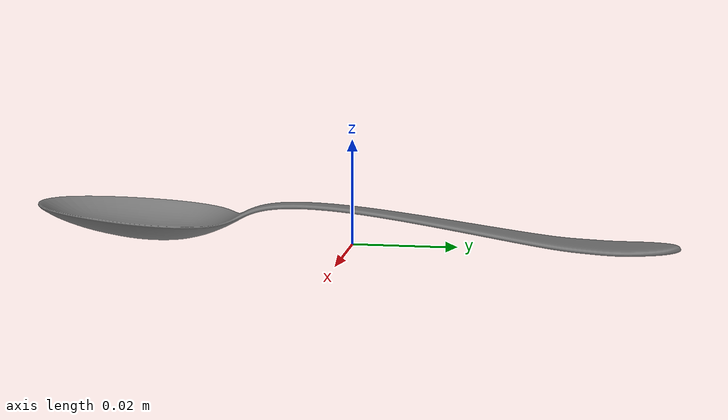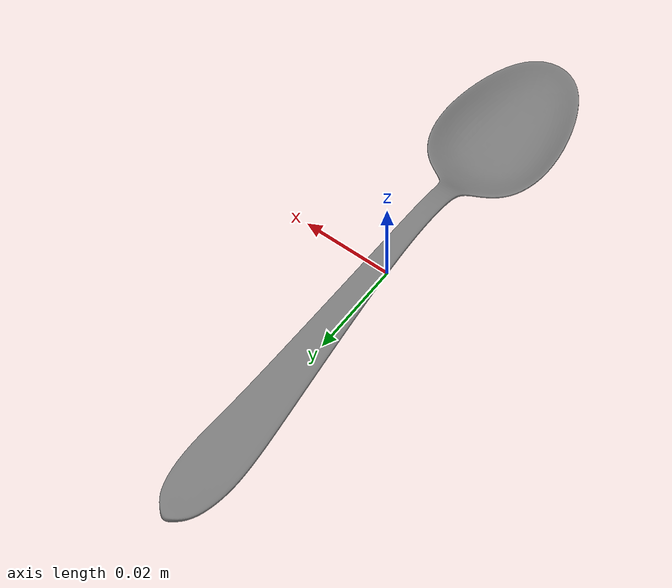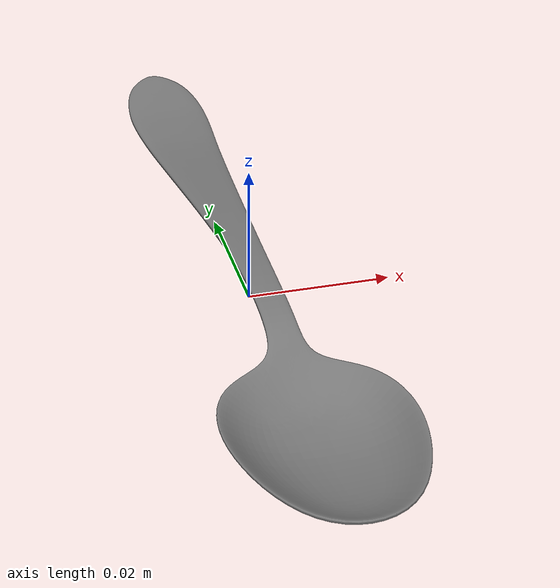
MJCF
<mujoco model="spoon">
  <default>
    <default class="visual">
      <geom group="1" type="mesh" contype="0" conaffinity="0"/>
    </default>
    <default class="collision">
      <geom group="0" type="mesh" solref="0.01 1" solimp="0.99 0.99 0.01" margin="0.001" priority="1" friction="5 5 0.0001"/>
    </default>
  </default>
  <asset>
    <material name="spoonmetal" specular="0.5" shininess="0.5" rgba="0.460235 0.460235 0.460235 1.000000"/>
    <mesh file="spoon.obj" name="spoon" scale="0.5 0.5 0.5"/>
    <mesh file="spoon_collision_0.obj" name="spoon_collision_0" scale="0.5 0.5 0.5"/>
    <mesh file="spoon_collision_1.obj" name="spoon_collision_1" scale="0.5 0.5 0.5"/>
    <mesh file="spoon_collision_2.obj" name="spoon_collision_2" scale="0.5 0.5 0.5"/>
    <mesh file="spoon_collision_3.obj" name="spoon_collision_3" scale="0.5 0.5 0.5"/>
    <mesh file="spoon_collision_4.obj" name="spoon_collision_4" scale="0.5 0.5 0.5"/>
    <mesh file="spoon_collision_5.obj" name="spoon_collision_5" scale="0.5 0.5 0.5"/>
  </asset>
  <worldbody>
    <body name="base" pos="0 0 0">
      <body name="object">
      <geom material="spoonmetal" mesh="spoon" class="visual"/>
      <geom mesh="spoon_collision_0" rgba="1 0 0 0" class="collision"/>
      <geom mesh="spoon_collision_1" rgba="1 0 0 0" class="collision"/>
      <geom mesh="spoon_collision_2" rgba="1 0 0 0" class="collision"/>
      <geom mesh="spoon_collision_3" rgba="1 0 0 0" class="collision"/>
      <geom mesh="spoon_collision_4" rgba="1 0 0 0" class="collision"/>
      <geom mesh="spoon_collision_5" rgba="1 0 0 0" class="collision"/>
      </body>
    </body>
  </worldbody>
</mujoco>
